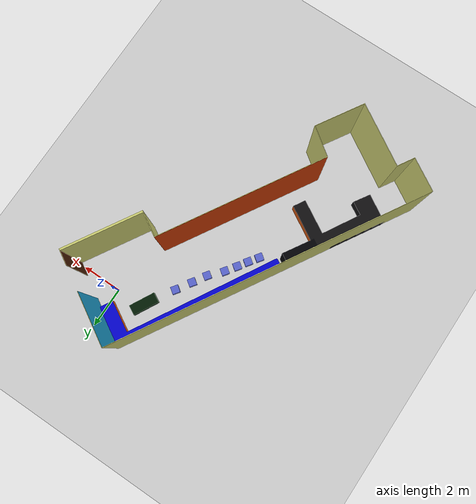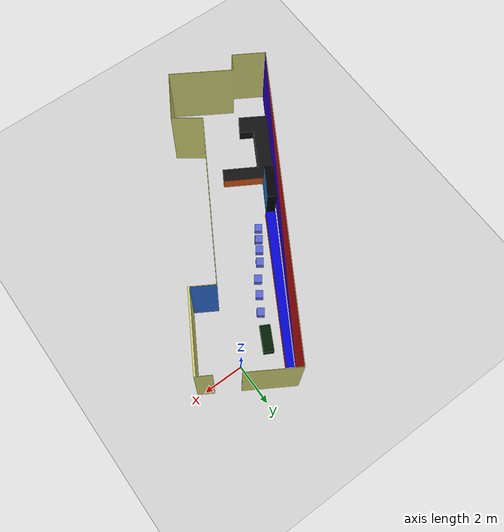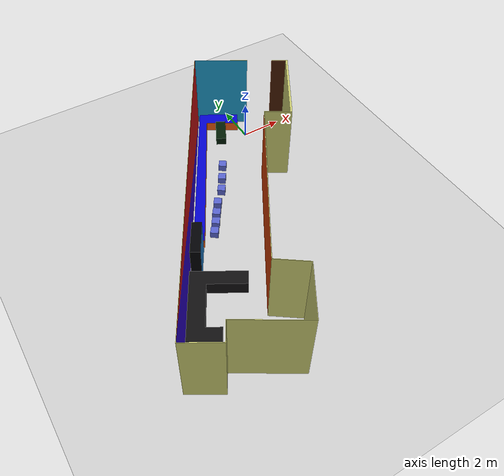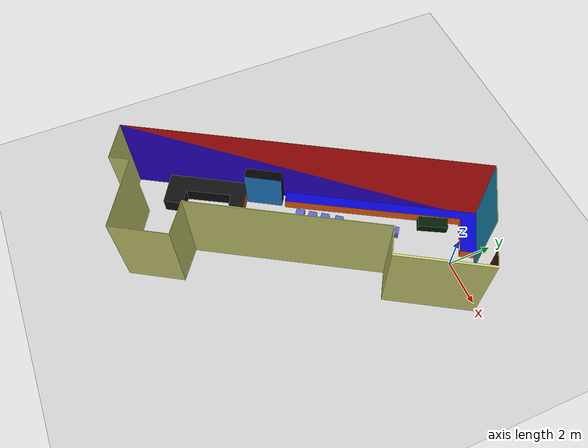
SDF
<sdf version='1.9'>
  <world name='empty'>
    <physics name='1ms' type='ignored'>
      <max_step_size>0.001</max_step_size>
      <real_time_factor>1</real_time_factor>
      <real_time_update_rate>1000</real_time_update_rate>
    </physics>
    <plugin name='gz::sim::systems::Physics' filename='ignition-gazebo-physics-system'/>
    <plugin name='gz::sim::systems::UserCommands' filename='ignition-gazebo-user-commands-system'/>
    <plugin name='gz::sim::systems::SceneBroadcaster' filename='ignition-gazebo-scene-broadcaster-system'/>
    <plugin name='gz::sim::systems::Contact' filename='ignition-gazebo-contact-system'/>
    <gravity>0 0 -9.8</gravity>
    <magnetic_field>6e-06 2.3e-05 -4.2e-05</magnetic_field>
    <atmosphere type='adiabatic'/>
    <scene>
      <ambient>0.4 0.4 0.4 1</ambient>
      <background>0.7 0.7 0.7 1</background>
      <shadows>false</shadows>
    </scene>
    <model name='ground_plane'>
      <static>true</static>
      <link name='link'>
        <collision name='collision'>
          <geometry>
            <plane>
              <normal>0 0 1</normal>
              <size>100 100</size>
            </plane>
          </geometry>
          <surface>
            <friction>
              <ode/>
            </friction>
            <bounce/>
            <contact/>
          </surface>
        </collision>
        <visual name='visual'>
          <geometry>
            <plane>
              <normal>0 0 1</normal>
              <size>100 100</size>
            </plane>
          </geometry>
          <material>
            <ambient>0.8 0.8 0.8 1</ambient>
            <diffuse>0.8 0.8 0.8 1</diffuse>
            <specular>0.8 0.8 0.8 1</specular>
          </material>
        </visual>
        <pose>0 0 0 0 -0 0</pose>
        <inertial>
          <pose>0 0 0 0 -0 0</pose>
          <mass>1</mass>
          <inertia>
            <ixx>1</ixx>
            <ixy>0</ixy>
            <ixz>0</ixz>
            <iyy>1</iyy>
            <iyz>0</iyz>
            <izz>1</izz>
          </inertia>
        </inertial>
        <enable_wind>false</enable_wind>
      </link>
      <pose>0 0 0 0 -0 0</pose>
      <self_collide>false</self_collide>
    </model>
    <include>
      <uri>file:///workspace/install/krytn/share/krytn/models//simple_gamecity</uri>
      <name>simple_gamecity</name>
      <pose>-3.90177 -5.01456 0 0 -0 0</pose>
    </include>
    <include>
      <uri>file:///workspace/install/krytn/share/krytn/models//whitecube</uri>
      <name>wc</name>
      <pose>-2.24863 -1.51957 0 0 0 -0.61182</pose>
    </include>
    <include>
      <uri>file:///workspace/install/krytn/share/krytn/models//greentable</uri>
      <name>gt</name>
      <pose>-1.62491 -0.137829 0.826396 0 0 -0.495364</pose>
    </include>
    <include>
      <uri>file:///workspace/install/krytn/share/krytn/models//whitecube</uri>
      <name>wc_1</name>
      <pose>-2.70961 -2.25438 0 0 0 -0.61182</pose>
    </include>
    <include>
      <uri>file:///workspace/install/krytn/share/krytn/models//whitecube</uri>
      <name>wc_2</name>
      <pose>-3.12219 -2.91807 0 0 0 -0.61182</pose>
    </include>
    <include>
      <uri>file:///workspace/install/krytn/share/krytn/models//whitecube</uri>
      <name>wc_3</name>
      <pose>-3.70281 -3.56425 0 0 0 -0.61182</pose>
    </include>
    <include>
      <uri>file:///workspace/install/krytn/share/krytn/models//whitecube</uri>
      <name>wc_4</name>
      <pose>-4.06743 -4.09195 0 0 0 -0.61182</pose>
    </include>
    <include>
      <uri>file:///workspace/install/krytn/share/krytn/models//whitecube</uri>
      <name>wc_5</name>
      <pose>-4.37422 -4.56196 0 0 0 -0.61182</pose>
    </include>
    <include>
      <uri>file:///workspace/install/krytn/share/krytn/models//whitecube</uri>
      <name>wc_6</name>
      <pose>-4.70737 -5.02963 0 0 0 -0.61182</pose>
    </include>
    <light name='sun' type='directional'>
      <pose>0 0 10 0 -0 0</pose>
      <cast_shadows>false</cast_shadows>
      <intensity>1</intensity>
      <direction>-0.5 0.1 -0.9</direction>
      <diffuse>0.8 0.8 0.8 1</diffuse>
      <specular>0.2 0.2 0.2 1</specular>
      <attenuation>
        <range>1000</range>
        <linear>0.01</linear>
        <constant>0.90000000000000002</constant>
        <quadratic>0.001</quadratic>
      </attenuation>
      <spot>
        <inner_angle>0</inner_angle>
        <outer_angle>0</outer_angle>
        <falloff>0</falloff>
      </spot>
    </light>
  </world>
</sdf>

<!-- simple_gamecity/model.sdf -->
<sdf version="1.5">
  <model name='gamecity'>
    <link name='link'>
      <visual name='visual'>
        <geometry>
          <mesh>
            <uri>model://simple_gamecity/meshes/simple_gamecity.dae</uri>
          </mesh>
        </geometry>
      </visual>

      <collision name='collision'>
        <geometry>
          <mesh>
            <uri>model://simple_gamecity/meshes/simple_gamecity.dae</uri>
          </mesh>
        </geometry>
      </collision>

      <pose>0 0 0 0 -0 0</pose>
      <inertial>
        <pose>0 0 0 0 -0 0</pose>
        <mass>1</mass>
        <inertia>
          <ixx>1</ixx>
          <ixy>0</ixy>
          <ixz>0</ixz>
          <iyy>1</iyy>
          <iyz>0</iyz>
          <izz>1</izz>
        </inertia>
      </inertial>
      <enable_wind>false</enable_wind>
    </link>
    <static>true</static>
    <self_collide>false</self_collide>
  </model>
</sdf>

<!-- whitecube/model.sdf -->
<sdf version="1.5">
  <model name='gamecity'>
    <link name='link'>
      <visual name='visual'>
        <geometry>
          <mesh>
            <uri>model://whitecube/meshes/whitecube.dae</uri>
          </mesh>
        </geometry>
      </visual>

      <collision name='collision'>
        <geometry>
          <mesh>
            <uri>model://whitecube/meshes/whitecube.dae</uri>
          </mesh>
        </geometry>
      </collision>

      <pose>0 0 0 0 -0 0</pose>
      <inertial>
        <pose>0 0 0 0 -0 0</pose>
        <mass>1</mass>
        <inertia>
          <ixx>1</ixx>
          <ixy>0</ixy>
          <ixz>0</ixz>
          <iyy>1</iyy>
          <iyz>0</iyz>
          <izz>1</izz>
        </inertia>
      </inertial>
      <enable_wind>false</enable_wind>
    </link>
    <static>false</static>
    <self_collide>false</self_collide>
  </model>
</sdf>

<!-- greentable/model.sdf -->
<sdf version="1.5">
  <model name='gamecity'>
    <link name='link'>
      <visual name='visual'>
        <geometry>
          <mesh>
            <uri>model://greentable/meshes/greentable.dae</uri>
          </mesh>
        </geometry>
      </visual>

      <collision name='collision'>
        <geometry>
          <mesh>
            <uri>model://greentable/meshes/greentable.dae</uri>
          </mesh>
        </geometry>
      </collision>

      <pose>0 0 0 0 -0 0</pose>
      <inertial>
        <pose>0 0 0 0 -0 0</pose>
        <mass>1</mass>
        <inertia>
          <ixx>1</ixx>
          <ixy>0</ixy>
          <ixz>0</ixz>
          <iyy>1</iyy>
          <iyz>0</iyz>
          <izz>1</izz>
        </inertia>
      </inertial>
      <enable_wind>false</enable_wind>
    </link>
    <static>false</static>
    <self_collide>false</self_collide>
  </model>
</sdf>
